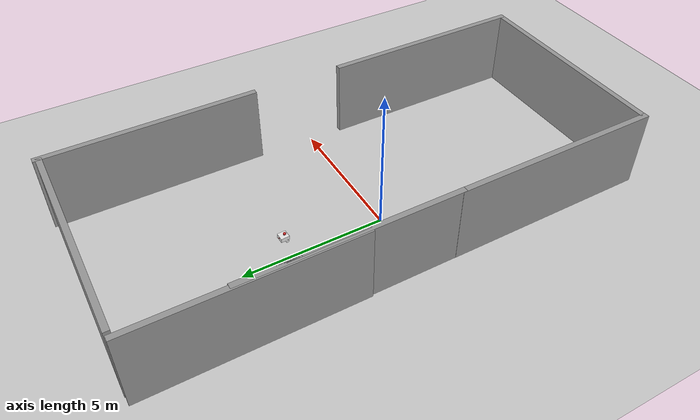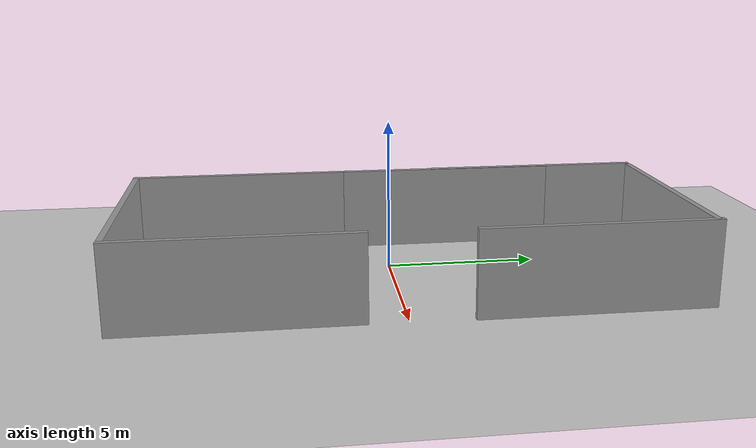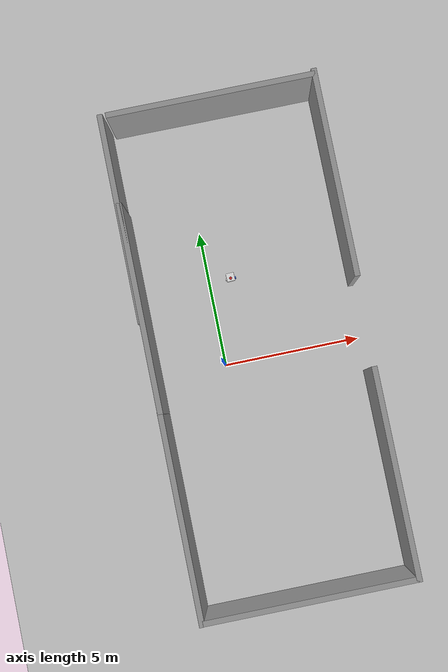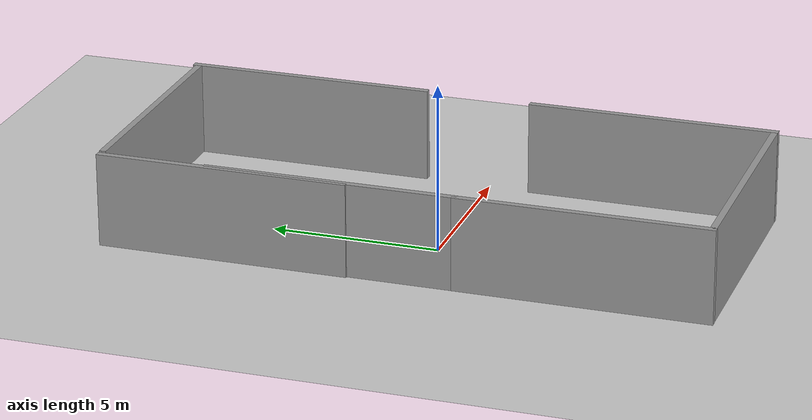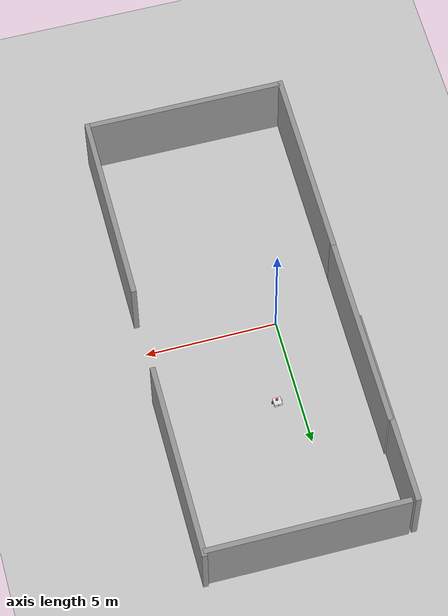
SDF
<sdf version="1.7">
 <world name="default">
  <light name="sun" type="directional">
   <pose>0 0 10 0 -0 0</pose>
   <diffuse>0.8 0.8 0.8 1</diffuse>
   <specular>0.2 0.2 0.2 1</specular>
   <attenuation>
    <range>1000</range>
    <constant>0.9</constant>
    <linear>0.01</linear>
    <quadratic>0.001</quadratic>
   </attenuation>
   <direction>-0.5 0.1 -0.9</direction>
   <spot><inner_angle>0</inner_angle><outer_angle>0</outer_angle><falloff>0</falloff></spot>
  </light>
  <model name="ground_plane">
   <static>1</static>
   <link name="link">
    <collision name="collision">
     <geometry><plane><normal>0 0 1</normal><size>100 100</size></plane></geometry>
     <surface><friction><ode><mu>100</mu><mu2>50</mu2></ode></friction></surface>
    </collision>
    <visual name="visual">
     <cast_shadows>0</cast_shadows>
     <geometry><plane><normal>0 0 1</normal><size>100 100</size></plane></geometry>
     <material>
      <script><uri>file://media/materials/scripts/gazebo.material</uri><name>Gazebo/Grey</name></script>
     </material>
    </visual>
   </link>
  </model>
  <gravity>0 0 -9.8</gravity>
  <magnetic_field>6e-06 2.3e-05 -4.2e-05</magnetic_field>
  <atmosphere type="adiabatic"/>
  <physics type="ode">
   <max_step_size>0.001</max_step_size>
   <real_time_factor>1</real_time_factor>
   <real_time_update_rate>1000</real_time_update_rate>
  </physics>
  <scene><ambient>0.4 0.4 0.4 1</ambient><background>0.7 0.7 0.7 1</background><shadows>1</shadows></scene>
  <spherical_coordinates>
   <surface_model>EARTH_WGS84</surface_model>
   <latitude_deg>0</latitude_deg>
   <longitude_deg>0</longitude_deg>
   <elevation>0</elevation>
   <heading_deg>0</heading_deg>
  </spherical_coordinates>
  <model name="behaviour_trees">
   <link name="base_link">
    <inertial>
     <pose>0.055714 0 0.078571 0 -0 0</pose>
     <mass>0.7</mass>
     <inertia>
      <ixx>0.0064169</ixx>
      <ixy>0</ixy>
      <ixz>0.00118929</ixz>
      <iyy>0.00745405</iyy>
      <iyz>0</iyz>
      <izz>0.00876214</izz>
     </inertia>
    </inertial>
    <collision name="base_link_fixed_joint_lump__chassis_collision">
     <pose>0.05 0 0.075 0 -0 0</pose>
     <geometry><box><size>0.3 0.3 0.15</size></box></geometry>
    </collision>
    <collision name="base_link_fixed_joint_lump__caster_wheel_collision_1">
     <pose>0.14 0 0 0 -0 0</pose>
     <geometry><sphere><radius>0.05</radius></sphere></geometry>
     <surface><friction><ode><mu>0.001</mu><mu2>0.001</mu2></ode></friction></surface>
    </collision>
    <collision name="base_link_fixed_joint_lump__laser_frame_collision_2">
     <pose>0 0 0.175 0 -0 0</pose>
     <geometry><cylinder><length>0.04</length><radius>0.05</radius></cylinder></geometry>
    </collision>
    <visual name="base_link_fixed_joint_lump__chassis_visual">
     <pose>0.05 0 0.075 0 -0 0</pose>
     <geometry><box><size>0.3 0.3 0.15</size></box></geometry>
     <material>
      <script><name>Gazebo/White</name><uri>file://media/materials/scripts/gazebo.material</uri></script>
     </material>
    </visual>
    <visual name="base_link_fixed_joint_lump__camera_link_visual_1">
     <pose>0.205 0 0.08 0 -0 0</pose>
     <geometry><box><size>0.01 0.03 0.03</size></box></geometry>
     <material>
      <script><name>Gazebo/Red</name><uri>file://media/materials/scripts/gazebo.material</uri></script>
     </material>
    </visual>
    <visual name="base_link_fixed_joint_lump__caster_wheel_visual_2">
     <pose>0.14 0 0 0 -0 0</pose>
     <geometry><sphere><radius>0.05</radius></sphere></geometry>
     <material>
      <script><name>Gazebo/Black</name><uri>file://media/materials/scripts/gazebo.material</uri></script>
     </material>
    </visual>
    <visual name="base_link_fixed_joint_lump__laser_frame_visual_3">
     <pose>0 0 0.175 0 -0 0</pose>
     <geometry><cylinder><length>0.04</length><radius>0.05</radius></cylinder></geometry>
     <material>
      <script><name>Gazebo/Red</name><uri>file://media/materials/scripts/gazebo.material</uri></script>
     </material>
    </visual>
    <sensor name="camera" type="camera">
     <visualize>1</visualize>
     <update_rate>10</update_rate>
     <camera>
      <horizontal_fov>1.089</horizontal_fov>
      <image><format>R8G8B8</format><width>640</width><height>480</height></image>
      <clip><near>0.05</near><far>8</far></clip>
     </camera>
     <plugin name="camera_controller" filename="libgazebo_ros_camera.so">
      <frame_name>camera_link_optical</frame_name>
     </plugin>
     <pose>0.205 0 0.08 0 -0 0</pose>
    </sensor>
    <sensor name="laser" type="ray">
     <visualize>1</visualize>
     <update_rate>10</update_rate>
     <ray>
      <scan>
       <horizontal>
        <samples>360</samples>
        <min_angle>-3.14</min_angle>
        <max_angle>3.14</max_angle>
        <resolution>1</resolution>
       </horizontal>
       <vertical><samples>1</samples><min_angle>0</min_angle><max_angle>0</max_angle></vertical>
      </scan>
      <range><min>0.3</min><max>12</max></range>
     </ray>
     <plugin name="laser_controller" filename="libgazebo_ros_ray_sensor.so">
      <ros><argument>~/out:=scan</argument></ros>
      <output_type>sensor_msgs/LaserScan</output_type>
      <frame_name>laser_frame</frame_name>
     </plugin>
     <pose>0 0 0.175 0 -0 0</pose>
    </sensor>
   </link>
   <joint name="left_wheel_joint" type="revolute">
    <pose relative_to="base_link">0 0.175 0 -1.5708 0 0</pose>
    <parent>base_link</parent>
    <child>left_wheel</child>
    <axis>
     <xyz>0 0 1</xyz>
     <limit><lower>-1e+16</lower><upper>1e+16</upper></limit>
     <dynamics><spring_reference>0</spring_reference><spring_stiffness>0</spring_stiffness></dynamics>
    </axis>
   </joint>
   <link name="left_wheel">
    <pose relative_to="left_wheel_joint">0 0 0 0 -0 0</pose>
    <inertial>
     <mass>0.1</mass>
     <inertia>
      <ixx>7.58333e-05</ixx>
      <ixy>0</ixy>
      <ixz>0</ixz>
      <iyy>7.58333e-05</iyy>
      <iyz>0</iyz>
      <izz>0.000125</izz>
     </inertia>
    </inertial>
    <collision name="left_wheel_collision">
     <geometry><cylinder><length>0.04</length><radius>0.05</radius></cylinder></geometry>
    </collision>
    <visual name="left_wheel_visual">
     <geometry><cylinder><length>0.04</length><radius>0.05</radius></cylinder></geometry>
     <material>
      <script><name>Gazebo/White</name><uri>file://media/materials/scripts/gazebo.material</uri></script>
     </material>
    </visual>
   </link>
   <joint name="right_wheel_joint" type="revolute">
    <pose relative_to="base_link">0 -0.175 0 1.5708 -0 0</pose>
    <parent>base_link</parent>
    <child>right_wheel</child>
    <axis>
     <xyz>0 0 -1</xyz>
     <limit><lower>-1e+16</lower><upper>1e+16</upper></limit>
     <dynamics><spring_reference>0</spring_reference><spring_stiffness>0</spring_stiffness></dynamics>
    </axis>
   </joint>
   <link name="right_wheel">
    <pose relative_to="right_wheel_joint">0 0 0 0 -0 0</pose>
    <inertial>
     <mass>0.1</mass>
     <inertia>
      <ixx>7.58333e-05</ixx>
      <ixy>0</ixy>
      <ixz>0</ixz>
      <iyy>7.58333e-05</iyy>
      <iyz>0</iyz>
      <izz>0.000125</izz>
     </inertia>
    </inertial>
    <collision name="right_wheel_collision">
     <geometry><cylinder><length>0.04</length><radius>0.05</radius></cylinder></geometry>
    </collision>
    <visual name="right_wheel_visual">
     <geometry><cylinder><length>0.04</length><radius>0.05</radius></cylinder></geometry>
     <material>
      <script><name>Gazebo/Blue</name><uri>file://media/materials/scripts/gazebo.material</uri></script>
     </material>
    </visual>
   </link>
   <static>0</static>
   <plugin name="diff_drive" filename="libgazebo_ros_diff_drive.so">
    <left_joint>left_wheel_joint</left_joint>
    <right_joint>right_wheel_joint</right_joint>
    <wheel_separation>0.35</wheel_separation>
    <wheel_diameter>0.1</wheel_diameter>
    <max_wheel_torque>200</max_wheel_torque>
    <max_wheel_acceleration>10.0</max_wheel_acceleration>
    <odometry_frame>odom</odometry_frame>
    <robot_base_frame>base_link</robot_base_frame>
    <publish_odom>1</publish_odom>
    <publish_odom_tf>1</publish_odom_tf>
    <publish_wheel_tf>1</publish_wheel_tf>
   </plugin>
   <pose>0.819884 3.12552 0.049998 1.9e-05 -1.6e-05 1.61519</pose>
  </model>
  <model name="grey_wall">
   <static>1</static>
   <link name="link">
    <pose>0 0 1.4 0 -0 0</pose>
    <collision name="collision"><geometry><box><size>7.5 0.2 2.8</size></box></geometry></collision>
    <visual name="visual">
     <cast_shadows>0</cast_shadows>
     <geometry><box><size>7.5 0.2 2.8</size></box></geometry>
     <material>
      <script>
       <uri>model://grey_wall/materials/scripts</uri>
       <uri>model://grey_wall/materials/textures</uri>
       <name>vrc/grey_wall</name>
      </script>
     </material>
    </visual>
   </link>
   <pose>1.29549 -8.60156 0 0 -0 0</pose>
  </model>
  <model name="grey_wall_clone">
   <static>1</static>
   <link name="link">
    <pose>0 0 1.4 0 -0 0</pose>
    <collision name="collision"><geometry><box><size>7.5 0.2 2.8</size></box></geometry></collision>
    <visual name="visual">
     <cast_shadows>0</cast_shadows>
     <geometry><box><size>7.5 0.2 2.8</size></box></geometry>
     <material>
      <script>
       <uri>model://grey_wall/materials/scripts</uri>
       <uri>model://grey_wall/materials/textures</uri>
       <name>vrc/grey_wall</name>
      </script>
     </material>
    </visual>
   </link>
   <pose>1.40773 9.28424 0 0 -0 0</pose>
  </model>
  <model name="grey_wall_clone_0">
   <static>1</static>
   <link name="link">
    <pose>0 0 1.4 0 -0 0</pose>
    <collision name="collision"><geometry><box><size>7.5 0.2 2.8</size></box></geometry></collision>
    <visual name="visual">
     <cast_shadows>0</cast_shadows>
     <geometry><box><size>7.5 0.2 2.8</size></box></geometry>
     <material>
      <script>
       <uri>model://grey_wall/materials/scripts</uri>
       <uri>model://grey_wall/materials/textures</uri>
       <name>vrc/grey_wall</name>
      </script>
     </material>
    </visual>
   </link>
   <pose>-2.49539 -4.95831 0 0 0 -1.57094</pose>
  </model>
  <model name="grey_wall_clone_0_clone">
   <static>1</static>
   <link name="link">
    <pose>0 0 1.4 0 -0 0</pose>
    <collision name="collision"><geometry><box><size>7.5 0.2 2.8</size></box></geometry></collision>
    <visual name="visual">
     <cast_shadows>0</cast_shadows>
     <geometry><box><size>7.5 0.2 2.8</size></box></geometry>
     <material>
      <script>
       <uri>model://grey_wall/materials/scripts</uri>
       <uri>model://grey_wall/materials/textures</uri>
       <name>vrc/grey_wall</name>
      </script>
     </material>
    </visual>
   </link>
   <pose>-2.48852 2.40014 0 0 0 -1.57094</pose>
  </model>
  <model name="grey_wall_clone_0_clone_0">
   <static>1</static>
   <link name="link">
    <pose>0 0 1.4 0 -0 0</pose>
    <collision name="collision"><geometry><box><size>7.5 0.2 2.8</size></box></geometry></collision>
    <visual name="visual">
     <cast_shadows>0</cast_shadows>
     <geometry><box><size>7.5 0.2 2.8</size></box></geometry>
     <material>
      <script>
       <uri>model://grey_wall/materials/scripts</uri>
       <uri>model://grey_wall/materials/textures</uri>
       <name>vrc/grey_wall</name>
      </script>
     </material>
    </visual>
   </link>
   <pose>-2.54391 5.60996 0 0 0 -1.57094</pose>
  </model>
  <model name="grey_wall_clone_0_clone_1">
   <static>1</static>
   <link name="link">
    <pose>0 0 1.4 0 -0 0</pose>
    <collision name="collision"><geometry><box><size>7.5 0.2 2.8</size></box></geometry></collision>
    <visual name="visual">
     <cast_shadows>0</cast_shadows>
     <geometry><box><size>7.5 0.2 2.8</size></box></geometry>
     <material>
      <script>
       <uri>model://grey_wall/materials/scripts</uri>
       <uri>model://grey_wall/materials/textures</uri>
       <name>vrc/grey_wall</name>
      </script>
     </material>
    </visual>
   </link>
   <pose>5.05584 -4.95421 0 0 0 -1.57094</pose>
  </model>
  <model name="grey_wall_clone_0_clone_2">
   <static>1</static>
   <link name="link">
    <pose>0 0 1.4 0 -0 0</pose>
    <collision name="collision"><geometry><box><size>7.5 0.2 2.8</size></box></geometry></collision>
    <visual name="visual">
     <cast_shadows>0</cast_shadows>
     <geometry><box><size>7.5 0.2 2.8</size></box></geometry>
     <material>
      <script>
       <uri>model://grey_wall/materials/scripts</uri>
       <uri>model://grey_wall/materials/textures</uri>
       <name>vrc/grey_wall</name>
      </script>
     </material>
    </visual>
   </link>
   <pose>5.14358 5.72508 0 0 0 -1.57094</pose>
  </model>
 </world>
</sdf>
